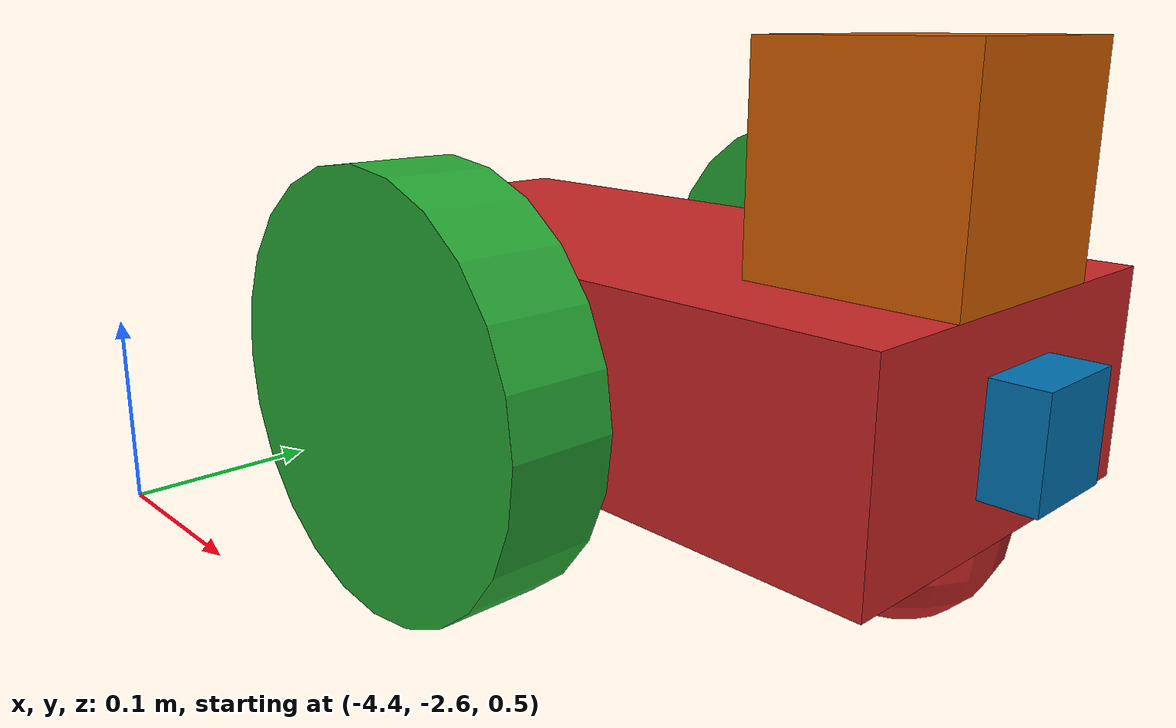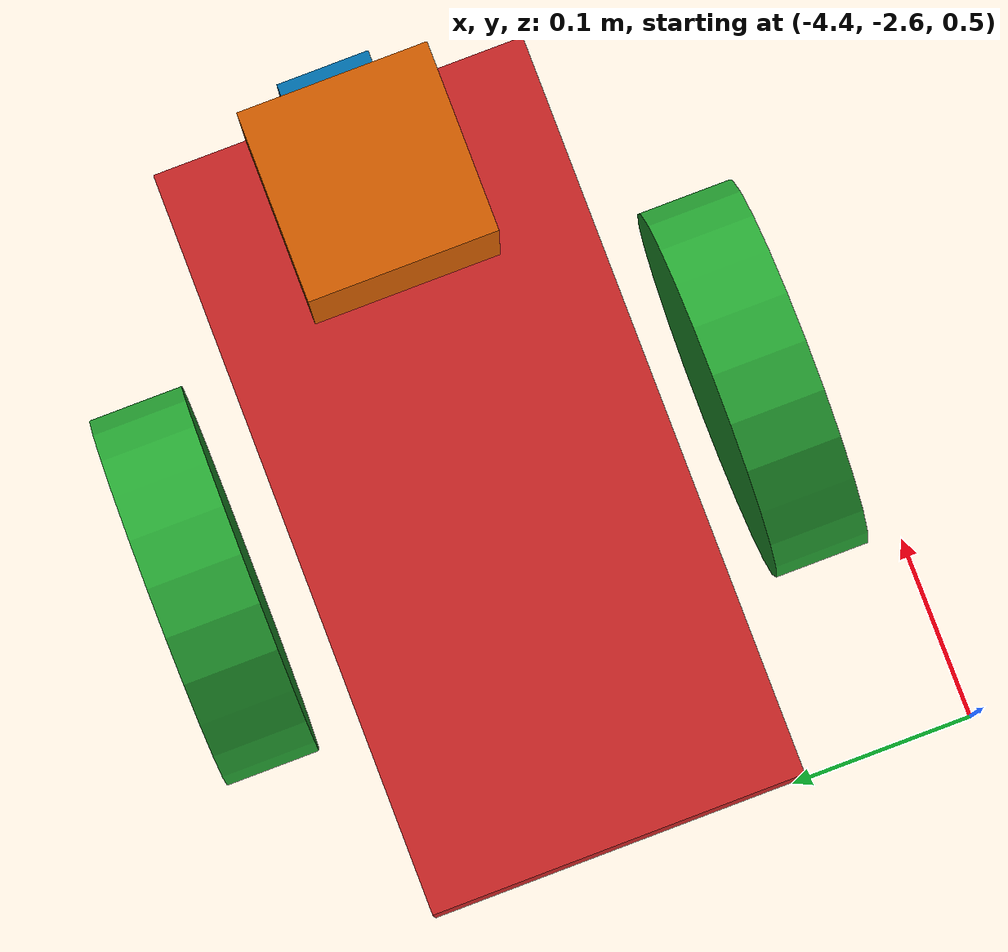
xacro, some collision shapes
<?xml version='1.0'?>

<robot name="my_robot" xmlns:xacro="http://www.ros.org/wiki/xacro">

  <link name="robot_footprint">
  <pose>-4.2 -2.4 0.6 0 0 0</pose>
  </link>
  <xacro:include filename="$(find my_robot)/urdf/my_robot.gazebo" />
  <joint name="robot_footprint_joint" type="fixed">
    <origin xyz="-4.2 -2.4 0.6" rpy="0 0 0" />
    <parent link="robot_footprint"/>
    <child link="chassis" />
  </joint>

  <link name='chassis'>

    <inertial>
      <mass value="15.0"/>
      <origin xyz="0.0 0 0" rpy=" 0 0 0"/>
      <inertia
          ixx="0.1" ixy="0" ixz="0"
          iyy="0.1" iyz="0"
          izz="0.1"
      />
    </inertial>

    <collision name='collision'>
      <origin xyz="0 0 0" rpy=" 0 0 0"/>
      <geometry>
        <box size=".4 .2 .1"/>
      </geometry>
    </collision>

    <visual name='chassis_visual'>
      <origin xyz="0 0 0" rpy=" 0 0 0"/>
      <geometry>
        <box size=".4 .2 .1"/>
      </geometry>
    </visual>

    <collision name='back_caster_collision'>
      <origin xyz="-0.15 0 -0.05" rpy=" 0 0 0"/>
      <geometry>
        <sphere radius="0.0499"/>
      </geometry>
    </collision>

    <visual name='back_caster_visual'>
      <origin xyz="-0.15 0 -0.05" rpy=" 0 0 0"/>
      <geometry>
        <sphere radius="0.05"/>
      </geometry>
    </visual>

    <collision name='front_caster_collision'>
      <origin xyz="0.15 0 -0.05" rpy=" 0 0 0"/>
      <geometry>
        <sphere radius="0.0499"/>
      </geometry>
    </collision>

    <visual name='front_caster_visual'>
      <origin xyz="0.15 0 -0.05" rpy=" 0 0 0"/>
      <geometry>
        <sphere radius="0.05"/>
      </geometry>
    </visual>

  </link>

  <!-- ////////////////My experiment////////////////// -->

  <joint type="continuous" name="left_wheel_hinge">
    <origin xyz="0 0.15 0" rpy="0 0 0"/>
    <child link="left_wheel"/>
    <parent link="chassis"/>
    <axis xyz="0 1 0" rpy="0 0 0"/>
    <limit effort="10000" velocity="1000"/>
    <dynamics damping="1.0" friction="1.0"/>
  </joint>

  <joint type="continuous" name="right_wheel_hinge">
    <origin xyz="0 -0.15 0" rpy="0 0 0"/>
    <child link="right_wheel"/>
    <parent link="chassis"/>
    <axis xyz="0 1 0" rpy="0 0 0"/>
    <limit effort="10000" velocity="1000"/>
    <dynamics damping="1.0" friction="1.0"/>
  </joint>

  <link name="left_wheel">

    <collision name='left_wheel_collision'>
      <origin xyz="0 0 0" rpy=" 0 1.57 1.57"/>
      <geometry>
        <cylinder radius="0.1" length="0.05"/>
      </geometry>
    </collision>

    <visual name='left_wheel_visual'>
      <origin xyz="0 0 0" rpy=" 0 1.57 1.57"/>
      <geometry>
        <cylinder radius="0.1" length="0.05"/>
      </geometry>
    </visual>

    <inertial>
      <mass value="5"/>
      <inertia ixx="0.1" ixy="0.0" ixz="0.0" iyy="0.1" iyz="0.0" izz="0.1"/>
    </inertial>
   </link>

    <!-- ////////////////My experiment////////////////// -->
     <link name="right_wheel">

    <collision name='right_wheel_collision'>
      <origin xyz="0 0 0" rpy=" 0 1.57 1.57"/>
      <geometry>
        <cylinder radius="0.1" length="0.05"/>
      </geometry>
    </collision>

    <visual name='right_wheel_visual'>
      <origin xyz="0 0 0" rpy=" 0 1.57 1.57"/>
      <geometry>
        <cylinder radius="0.1" length="0.05"/>
      </geometry>
    </visual>

    <inertial>
      <mass value="5"/>
      <inertia ixx="0.1" ixy="0.0" ixz="0.0" iyy="0.1" iyz="0.0" izz="0.1"/>
    </inertial>
   </link>

  <link name="camera">
    <collision name="cam_coll">
      <origin xyz="0 0 0" rpy="0 0 0"/>
      <geometry>
        <box size="0.05 0.05 0.05"/>
      </geometry>
    </collision>
    <visual name="cam_visual">
      <origin xyz="0 0 0" rpy="0 0 0"/>
      <geometry>
        <box size="0.05 0.05 0.05"/>
      </geometry>
    </visual>
    <inertial>
      <mass value="0.1"/>
      <inertia ixx="1e-6" ixy="0.0" ixz="0.0" iyy="1e-6" iyz="0.0" izz="1e-6"/>
    </inertial>
  </link>

  <joint type="fixed" name="camera_joint">
    <origin xyz="0.2 0 0" rpy="0 0 0"/>
    <child link="camera"/>
    <parent link="chassis"/>
    <axis xyz="0 1 0" rpy="0 0 0"/>
  </joint>

  <link name="hokuyo">
    <collision name="hokuyo_coll">
      <origin xyz="0 0 0" rpy="0 0 0"/>
      <geometry>
        <box size="0.1 0.1 0.1"/>
      </geometry>
    </collision>
    <visual name="hokuyo_visual">
      <origin xyz="0 0 0" rpy="0 0 0"/>
      <geometry>
        <mesh filename = "package://my_robot/meshes/hokuyo.dae"/>
      </geometry>
    </visual>
    <inertial>
      <mass value="1e-5"/>
      <inertia ixx="1e-6" ixy="0.0" ixz="0.0" iyy="1e-6" iyz="0.0" izz="1e-6"/>
    </inertial>
  </link>

  <joint type="fixed" name="hokuyo_joint">
    <origin xyz="0.15 0 0.1" rpy="0 0 0"/>
    <axis xyz="0 1 0" rpy="0 0 0"/>
    <parent link="chassis"/>
    <child link ="hokuyo"/>
  </joint>

  <gazebo reference="chassis">
    <material>Gazebo/Red</material>
  </gazebo>
  <gazebo reference="left_wheel">
    <material>Gazebo/Green</material>
  </gazebo>
  <gazebo reference="right_wheel">
    <material>Gazebo/Green</material>
  </gazebo>
</robot>
